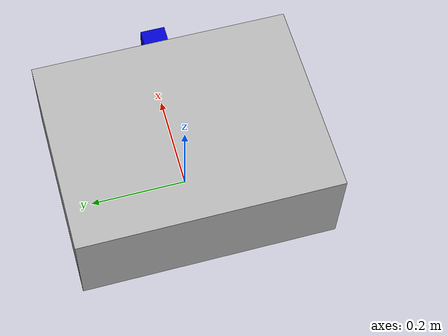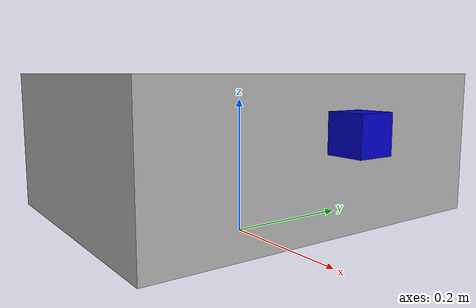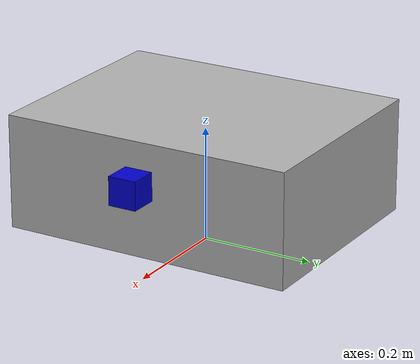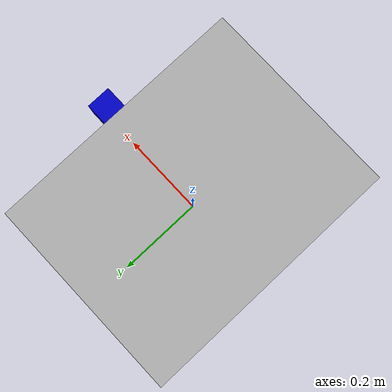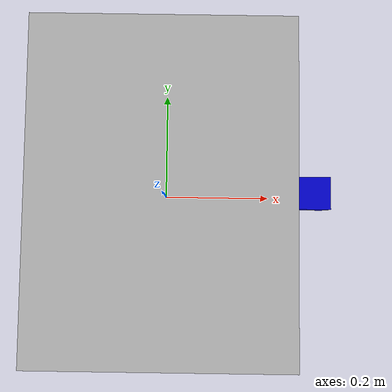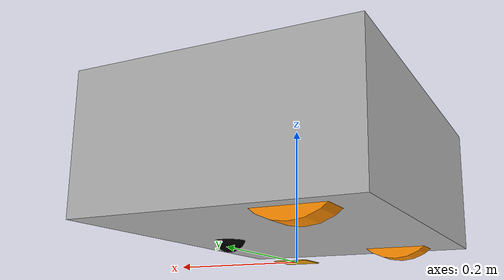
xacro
<?xml version="1.0"?>
<robot name="differential_wheeled_robot" xmlns:xacro="http://www.ros.org/wiki/xacro">

  <xacro:include filename="$(find dashur_description)/urdf/dashgo_wheel.xacro" />

<!-- Defining the colors used in this robot -->
  <material name="Black">
    <color rgba="0.0 0.0 0.0 1.0"/>
  </material>

  <material name="Red">
    <color rgba="0.8 0.0 0.0 1.0"/>
  </material>

  <material name="White">
    <color rgba="1.0 1.0 1.0 1.0"/>
  </material>

  <material name="Blue">
    <color rgba="0.0 0.0 0.8 1.0"/>
  </material>

  <material name="Orange">
    <color rgba="1.0 0.55 0.0 1.0"/>
  </material>

  <material name="Grey">
    <color rgba="0.7 0.7 0.7 1.0"/>
  </material>

  <!-- PROPERTY LIST -->
  <!--All units in m-kg-s-radians unit system -->
	<property name="base_x" value="0.40" />
	<property name="base_y" value="0.52" />
	<property name="base_length" value="0.20" />
  <property name="M_PI" value="3.1415926535897931" />
  <property name="M_PI_2" value="1.570796327" />
  <property name="DEG_TO_RAD" value="0.017453293" />

  <!-- Main body radius and height -->
  <!-- Main Body Cylinder base   -->
  <property name="base_height" value="0.02" />
  <property name="base_radius" value="0.15" />
  <property name="base_mass" value="5" /> <!-- in kg-->

  <!-- caster wheel radius and height -->
  <!-- caster wheel mass -->
  <property name="caster_f_height" value="0.04" />
  <property name="caster_f_radius" value="0.025" />
  <property name="caster_f_mass" value="0.5" /> <!-- in kg-->

  <!-- caster wheel radius and height -->
  <!-- caster wheel mass -->
  <property name="caster_b_height" value="0.04" />
  <property name="caster_b_radius" value="0.025" />
  <property name="caster_b_mass" value="0.5" /> <!-- in kg-->

  <!-- Wheels -->

  <property name="wheel_mass" value="2.5" /> --> <!-- in kg-->

  <property name="base_x_origin_to_wheel_origin" value="-0.095" />
  <property name="base_y_origin_to_wheel_origin" value="0.21" />
  <property name="base_z_origin_to_wheel_origin" value="-0.038" />

  <!-- Hokuyo Laser scanner -->
  <property name="hokuyo_size" value="0.05" />

  <!-- Macro for calculating inertia of cylinder -->
  <macro name="cylinder_inertia" params="m r h">
    <inertia  ixx="${m*(3*r*r+h*h)/12}" ixy = "0" ixz = "0"
              iyy="${m*(3*r*r+h*h)/12}" iyz = "0"
              izz="${m*r*r/2}" />
  </macro>

  <!-- BASE-FOOTPRINT -->
  <!-- base_footprint is a fictitious link(frame) that is on the ground right below base_link origin -->
  <link name="base_footprint">
    <inertial>
      <mass value="0.0001" />
      <origin xyz="0 0 0" />
      <inertia ixx="0.001" ixy="0.0" ixz="0.0"
          iyy="0.001" iyz="0.0"
          izz="0.002" />
    </inertial>
    <visual>
        <origin xyz="0 0 0" rpy="0 0 0" />
        <geometry>
            <box size="0.05 0.05 0.001" />
        </geometry>
    </visual>
  </link>

  <gazebo reference="base_footprint">
    <turnGravityOff>false</turnGravityOff>
  </gazebo>

  <joint name="base_footprint_joint" type="fixed">
		<origin xyz="0 0 ${base_length/2 - base_z_origin_to_wheel_origin}" rpy="0 0 0" />
    <parent link="base_footprint"/>
    <child link="base_link" />
  </joint>

  <!-- BASE-LINK -->
  <!--Actual body/chassis of the robot-->
  <link name="base_link">
    <inertial>
      <mass value="${base_mass}" />
      <origin xyz="0 0 0" />
      <!--The 3x3 rotational inertia matrix. -->
      <inertia ixx="0.13" ixy="0.0" ixz="0.0"
          iyy="0.083" iyz="0.0"
          izz="0.18" />

    </inertial>
    <visual>
      <origin xyz="0 0 0" rpy="0 0 0" />
      <geometry>
					<box size="${base_x} ${base_y} ${base_length}"/>
      </geometry>
			<material name="Grey" />
    </visual>
    <collision>
      <origin xyz="0 0 0" rpy="0 0 0 " />
      <geometry>

					<box size="${base_x} ${base_y} ${base_length}"/>

      </geometry>
    </collision>
  </link>
  <gazebo reference="base_link">
    <material>Gazebo/LightGrey</material>
    <turnGravityOff>false</turnGravityOff>
  </gazebo>

<!--Caster front  -->

    <link name="caster_front_link">

    <visual>
      <origin xyz="0 0 0" rpy="${M_PI/2} 0 0" />
      <geometry>
	<sphere radius="${caster_f_radius}" />
      </geometry>
      <material name="Black" />
    </visual>

      <collision>
        <geometry>

	<sphere radius="${caster_f_radius}" />

        </geometry>
			<material name="Black" />
      <origin xyz="0 0 0" rpy="${M_PI/2} 0 0" />
      </collision>
      <inertial>
        <mass value="${caster_f_mass}" />
        <origin xyz="0 0 0" />
        <inertia ixx="0.001" ixy="0.0" ixz="0.0"
                 iyy="0.001" iyz="0.0"
                 izz="0.001" />
      </inertial>
    </link>

 <joint name="caster_front_joint" type="fixed">
      <parent link="base_link"/>
      <child link="caster_front_link"/>
      <origin xyz="0.115 0.0 -0.093" rpy="${-M_PI/2} 0 0"/>
    </joint>

  <gazebo reference="caster_front_link">
    <turnGravityOff>false</turnGravityOff>
    <material>Gazebo/Black</material>
  </gazebo>

<!--Caster back  -->

    <link name="caster_back_link">

    <visual>
      <origin xyz="0.02 0.02 0 " rpy="${M_PI/2} 0 0" />

      <geometry>

	<sphere radius="${caster_b_radius}" />

      </geometry>
      <material name="Black" />
    </visual>

      <collision>
        <geometry>
		<sphere radius="${caster_b_radius}" />
        </geometry>
      <origin xyz="0 0.02 0 " rpy="${M_PI/2} 0 0" />
      </collision>
      <inertial>
        <mass value="${caster_b_mass}" />
        <origin xyz="0 0 0" />
        <inertia ixx="0.001" ixy="0.0" ixz="0.0"
                 iyy="0.001" iyz="0.0"
                 izz="0.001" />
      </inertial>
    </link>

    <joint name="caster_back_joint" type="fixed">
      <parent link="base_link"/>
      <child link="caster_back_link"/>
      <origin xyz="-0.135 0.0 0.009" rpy="${-M_PI/2} 0 0"/>
    </joint>

  <gazebo reference="caster_back_link">
    <turnGravityOff>false</turnGravityOff>
  </gazebo>

<!-- Wheel Definitions -->

  <wheel fb="front" lr="right" parent="base_link" translateX="0" translateY="1" flipY="1"/>
  <wheel fb="front" lr="left" parent="base_link" translateX="0" translateY="-1" flipY="1"/>

  <!-- SENSORS -->

  <!-- hokuyo -->

  <link name="hokuyo_link">
    <visual>
      <origin xyz="0 0 0" rpy="0 0 0" />
      <geometry>
        <box size="${hokuyo_size} ${hokuyo_size} ${hokuyo_size}"/>
      </geometry>
      <material name="Blue" />
    </visual>
  </link>
  <joint name="hokuyo_joint" type="fixed">
		<origin xyz="${base_y/2 - hokuyo_size/2} 0 ${base_height+hokuyo_size/4}" rpy="0 0 0" />
    <parent link="base_link"/>
    <child link="hokuyo_link" />
  </joint>
  <gazebo reference="hokuyo_link">
    <material>Gazebo/Blue</material>
    <turnGravityOff>false</turnGravityOff>
    <sensor type="ray" name="head_hokuyo_sensor">
      <pose>${hokuyo_size/2} 0 0 0 0 0</pose>
      <visualize>false</visualize>
      <update_rate>40</update_rate>
      <ray>
        <scan>
          <horizontal>
            <samples>720</samples>
            <resolution>1</resolution>
            <min_angle>-1.570796</min_angle>
            <max_angle>1.570796</max_angle>
          </horizontal>
        </scan>
        <range>
          <min>0.10</min>
          <max>10.0</max>
          <resolution>0.001</resolution>
        </range>
      </ray>
      <plugin name="gazebo_ros_head_hokuyo_controller" filename="libgazebo_ros_laser.so">
        <topicName>/scan</topicName>
        <frameName>hokuyo_link</frameName>
      </plugin>
    </sensor>
  </gazebo>

  <!-- Differential drive controller  -->
  <gazebo>
    <plugin name="differential_drive_controller" filename="libgazebo_ros_diff_drive.so">

      <rosDebugLevel>Debug</rosDebugLevel>
      <publishWheelTF>false</publishWheelTF>
      <robotNamespace>/</robotNamespace>
      <publishTf>1</publishTf>
      <publishWheelJointState>false</publishWheelJointState>
      <alwaysOn>true</alwaysOn>
      <updateRate>100.0</updateRate>
      <leftJoint>front_left_wheel_joint</leftJoint>
      <rightJoint>front_right_wheel_joint</rightJoint>
      <wheelSeparation>${2*base_radius}</wheelSeparation>
      <wheelDiameter>${2*wheel_radius}</wheelDiameter>
      <broadcastTF>1</broadcastTF>
      <wheelTorque>30</wheelTorque>
      <wheelAcceleration>1.8</wheelAcceleration>
      <commandTopic>cmd_vel</commandTopic>
      <odometryFrame>odom</odometryFrame>
      <odometryTopic>odom</odometryTopic>
      <robotBaseFrame>base_footprint</robotBaseFrame>

    </plugin>
  </gazebo>

</robot>

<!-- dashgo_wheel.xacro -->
<robot name="wheel" xmlns:xacro="http://www.ros.org/wiki/xacro">

  <!-- Wheels -->
  <property name="wheel_radius" value="0.0801" />
  <property name="wheel_height" value="0.046" />
  <property name="wheel_mass" value="2.5" /> <!-- in kg-->

  <property name="base_x_origin_to_wheel_origin" value="0" />
  <property name="base_y_origin_to_wheel_origin" value="0.21" />
  <property name="base_z_origin_to_wheel_origin" value="-0.038" />

  <macro name="cylinder_inertia" params="m r h">
    <inertia  ixx="${m*(3*r*r+h*h)/12}" ixy = "0" ixz = "0"
              iyy="${m*(3*r*r+h*h)/12}" iyz = "0"
              izz="${m*r*r/2}" />
  </macro>

  <macro name="box_inertia" params="m x y h">
    <inertia  ixx="${m*(y*y+h*h)/12}" ixy = "0" ixz = "0"
              iyy="${m*(x*x+h*h)/12}" iyz = "0"
              izz="${m*(x*x+y*y)/12}" />
  </macro>

  <xacro:macro name="wheel" params="fb lr parent translateX translateY flipY"> <!--fb : front, back ; lr: left, right -->
    <link name="${fb}_${lr}_wheel">
      <visual>
        <origin xyz="0 0 0" rpy="${flipY*M_PI/2} 0  0 " />
        <geometry>
          <cylinder length="${wheel_height}" radius="${wheel_radius}" />
        </geometry>
        <material name="Orange" />
      </visual>
      <collision>
        <origin xyz="0 0 0" rpy="${flipY*M_PI/2} 0 0 " />
        <geometry>
          <cylinder length="${wheel_height}" radius="${wheel_radius}" />
        </geometry>
      </collision>
      <inertial>
        <mass value="${wheel_mass}" />
        <origin xyz="0 0 0" />
        <cylinder_inertia  m="${wheel_mass}" r="${wheel_radius}" h="${wheel_height}" />
      </inertial>
    </link>

    <gazebo reference="${fb}_${lr}_wheel">
      <mu1 value="1.0"/>
      <mu2 value="1.0"/>
      <kp  value="10000000.0" />
      <kd  value="1.0" />
      <fdir1 value="1 0 0"/>
      <material>Gazebo/Orange</material>
      <turnGravityOff>false</turnGravityOff>
    </gazebo>

    <joint name="${fb}_${lr}_wheel_joint" type="continuous">
      <parent link="${parent}"/>
      <child link="${fb}_${lr}_wheel"/>
      <origin xyz="${base_x_origin_to_wheel_origin} ${translateY * base_y_origin_to_wheel_origin} ${base_z_origin_to_wheel_origin}" rpy="0 0 0" />
      <axis xyz="0 1 0" rpy="0  0" />
      <limit effort="100" velocity="100"/>
      <joint_properties damping="0.0" friction="0.0"/>
    </joint>

    <!-- Transmission is important to link the joints and the controller -->
    <transmission name="${fb}_${lr}_wheel_joint_trans">
      <type>transmission_interface/SimpleTransmission</type>
      <joint name="${fb}_${lr}_wheel_joint" />
      <actuator name="${fb}_${lr}_wheel_joint_motor">
        <hardwareInterface>EffortJointInterface</hardwareInterface>
        <mechanicalReduction>1</mechanicalReduction>
      </actuator>
    </transmission>

  </xacro:macro>
</robot>
